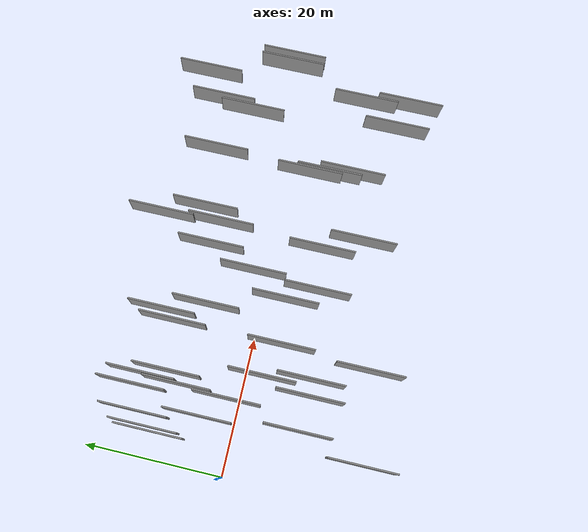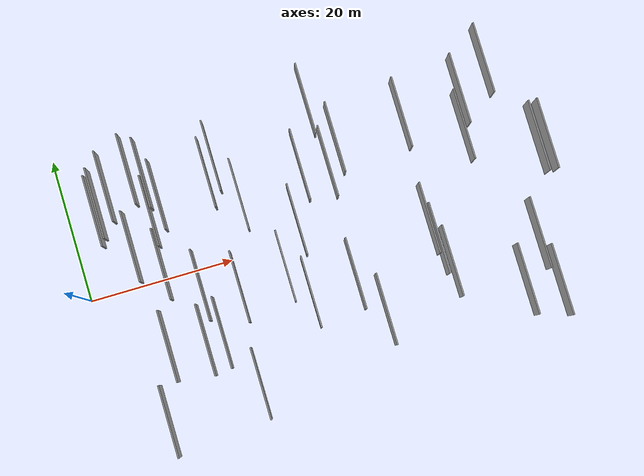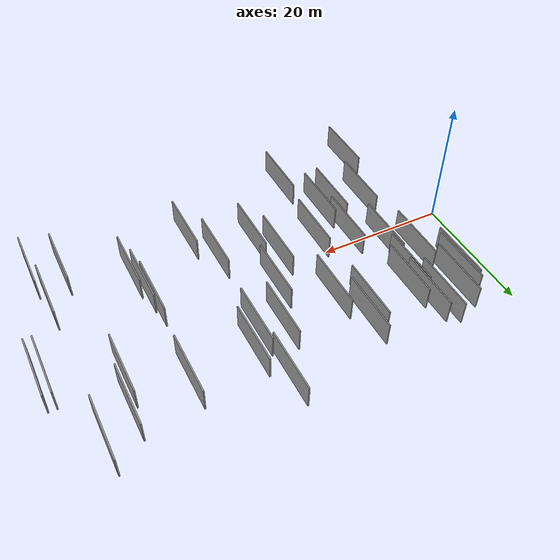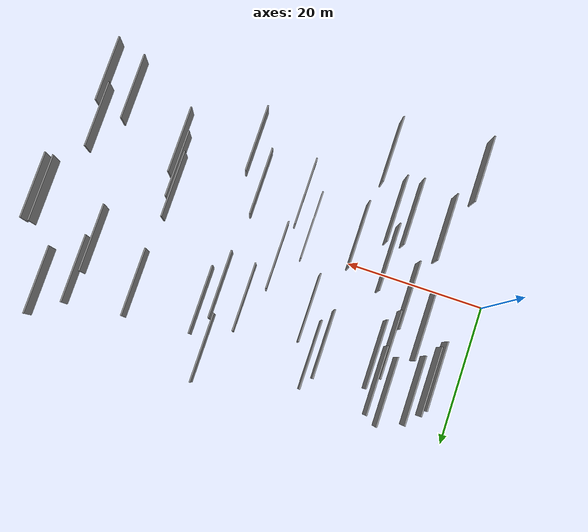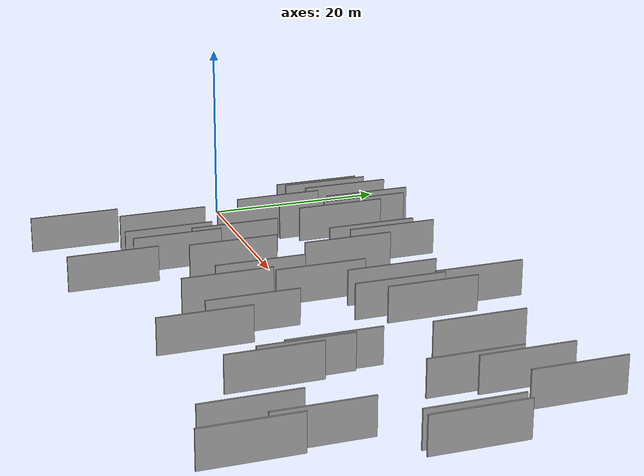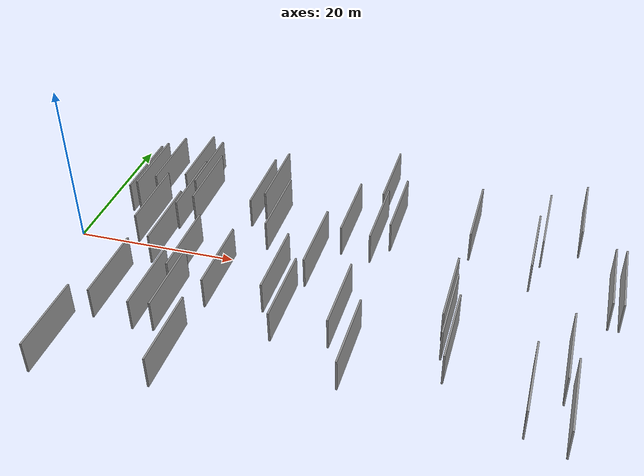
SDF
<sdf version="1.6">
 <world name="default">
  <scene>
   <sky><clouds><speed>12</speed></clouds></sky>
   <ambient>0.4 0.4 0.4 1</ambient>
   <background>0.7 0.7 0.7 1</background>
   <shadows>1</shadows>
  </scene>
  <gravity>0 0 -9.8066</gravity>
  <magnetic_field>6e-06 2.3e-05 -4.2e-05</magnetic_field>
  <physics default="0" name="default_physics" type="ode">
   <ode>
    <solver>
     <type>quick</type>
     <iters>10</iters>
     <sor>1.0</sor>
     <use_dynamic_moi_rescaling>0</use_dynamic_moi_rescaling>
    </solver>
    <constraints>
     <cfm>0</cfm>
     <erp>0.2</erp>
     <contact_max_correcting_vel>100</contact_max_correcting_vel>
     <contact_surface_layer>0.001</contact_surface_layer>
    </constraints>
   </ode>
   <max_step_size>0.004</max_step_size>
   <real_time_factor>1</real_time_factor>
   <real_time_update_rate>250</real_time_update_rate>
  </physics>
  <light name="sun" type="directional">
   <pose>0 0 10 0 0 0</pose>
   <diffuse>0.8 0.8 0.8 1</diffuse>
   <specular>0.2 0.2 0.2 1</specular>
   <attenuation>
    <range>1000</range>
    <constant>0.9</constant>
    <linear>0.01</linear>
    <quadratic>0.001</quadratic>
   </attenuation>
   <direction>-0.5 0.1 -0.9</direction>
  </light>
  <model name="grey_wall_1">
   <static>1</static>
   <pose>12.6579 11.2083 0.0 0.000000 0.000000 1.570796</pose>
   <link name="link">
    <pose>0 0 2.00 0 0 0</pose>
    <collision name="collision"><geometry><box><size>10.00 0.2 4.00</size></box></geometry></collision>
    <visual name="visual">
     <cast_shadows>0</cast_shadows>
     <geometry><box><size>10.00 0.2 4.00</size></box></geometry>
     <material>
      <script>
       <uri>model://grey_wall/materials/scripts</uri>
       <uri>model://grey_wall/materials/textures</uri>
       <name>vrc/grey_wall</name>
      </script>
     </material>
    </visual>
   </link>
  </model>
  <model name="grey_wall_2">
   <static>1</static>
   <pose>29.0719 -7.4037 0.0 0.000000 0.000000 1.570796</pose>
   <link name="link">
    <pose>0 0 2.00 0 0 0</pose>
    <collision name="collision"><geometry><box><size>10.00 0.2 4.00</size></box></geometry></collision>
    <visual name="visual">
     <cast_shadows>0</cast_shadows>
     <geometry><box><size>10.00 0.2 4.00</size></box></geometry>
     <material>
      <script>
       <uri>model://grey_wall/materials/scripts</uri>
       <uri>model://grey_wall/materials/textures</uri>
       <name>vrc/grey_wall</name>
      </script>
     </material>
    </visual>
   </link>
  </model>
  <model name="grey_wall_3">
   <static>1</static>
   <pose>60.6945 16.6076 0.0 0.000000 0.000000 1.570796</pose>
   <link name="link">
    <pose>0 0 2.00 0 0 0</pose>
    <collision name="collision"><geometry><box><size>10.00 0.2 4.00</size></box></geometry></collision>
    <visual name="visual">
     <cast_shadows>0</cast_shadows>
     <geometry><box><size>10.00 0.2 4.00</size></box></geometry>
     <material>
      <script>
       <uri>model://grey_wall/materials/scripts</uri>
       <uri>model://grey_wall/materials/textures</uri>
       <name>vrc/grey_wall</name>
      </script>
     </material>
    </visual>
   </link>
  </model>
  <model name="grey_wall_4">
   <static>1</static>
   <pose>21.2465 14.1780 0.0 0.000000 0.000000 1.570796</pose>
   <link name="link">
    <pose>0 0 2.00 0 0 0</pose>
    <collision name="collision"><geometry><box><size>10.00 0.2 4.00</size></box></geometry></collision>
    <visual name="visual">
     <cast_shadows>0</cast_shadows>
     <geometry><box><size>10.00 0.2 4.00</size></box></geometry>
     <material>
      <script>
       <uri>model://grey_wall/materials/scripts</uri>
       <uri>model://grey_wall/materials/textures</uri>
       <name>vrc/grey_wall</name>
      </script>
     </material>
    </visual>
   </link>
  </model>
  <model name="grey_wall_5">
   <static>1</static>
   <pose>7.4385 5.3698 0.0 0.000000 0.000000 1.570796</pose>
   <link name="link">
    <pose>0 0 2.00 0 0 0</pose>
    <collision name="collision"><geometry><box><size>10.00 0.2 4.00</size></box></geometry></collision>
    <visual name="visual">
     <cast_shadows>0</cast_shadows>
     <geometry><box><size>10.00 0.2 4.00</size></box></geometry>
     <material>
      <script>
       <uri>model://grey_wall/materials/scripts</uri>
       <uri>model://grey_wall/materials/textures</uri>
       <name>vrc/grey_wall</name>
      </script>
     </material>
    </visual>
   </link>
  </model>
  <model name="grey_wall_6">
   <static>1</static>
   <pose>61.8766 -15.3295 0.0 0.000000 0.000000 1.570796</pose>
   <link name="link">
    <pose>0 0 2.00 0 0 0</pose>
    <collision name="collision"><geometry><box><size>10.00 0.2 4.00</size></box></geometry></collision>
    <visual name="visual">
     <cast_shadows>0</cast_shadows>
     <geometry><box><size>10.00 0.2 4.00</size></box></geometry>
     <material>
      <script>
       <uri>model://grey_wall/materials/scripts</uri>
       <uri>model://grey_wall/materials/textures</uri>
       <name>vrc/grey_wall</name>
      </script>
     </material>
    </visual>
   </link>
  </model>
  <model name="grey_wall_7">
   <static>1</static>
   <pose>64.7455 4.1946 0.0 0.000000 0.000000 1.570796</pose>
   <link name="link">
    <pose>0 0 2.00 0 0 0</pose>
    <collision name="collision"><geometry><box><size>10.00 0.2 4.00</size></box></geometry></collision>
    <visual name="visual">
     <cast_shadows>0</cast_shadows>
     <geometry><box><size>10.00 0.2 4.00</size></box></geometry>
     <material>
      <script>
       <uri>model://grey_wall/materials/scripts</uri>
       <uri>model://grey_wall/materials/textures</uri>
       <name>vrc/grey_wall</name>
      </script>
     </material>
    </visual>
   </link>
  </model>
  <model name="grey_wall_8">
   <static>1</static>
   <pose>6.0194 -18.6114 0.0 0.000000 0.000000 1.570796</pose>
   <link name="link">
    <pose>0 0 2.00 0 0 0</pose>
    <collision name="collision"><geometry><box><size>10.00 0.2 4.00</size></box></geometry></collision>
    <visual name="visual">
     <cast_shadows>0</cast_shadows>
     <geometry><box><size>10.00 0.2 4.00</size></box></geometry>
     <material>
      <script>
       <uri>model://grey_wall/materials/scripts</uri>
       <uri>model://grey_wall/materials/textures</uri>
       <name>vrc/grey_wall</name>
      </script>
     </material>
    </visual>
   </link>
  </model>
  <model name="grey_wall_9">
   <static>1</static>
   <pose>11.5013 14.6143 0.0 0.000000 0.000000 1.570796</pose>
   <link name="link">
    <pose>0 0 2.00 0 0 0</pose>
    <collision name="collision"><geometry><box><size>10.00 0.2 4.00</size></box></geometry></collision>
    <visual name="visual">
     <cast_shadows>0</cast_shadows>
     <geometry><box><size>10.00 0.2 4.00</size></box></geometry>
     <material>
      <script>
       <uri>model://grey_wall/materials/scripts</uri>
       <uri>model://grey_wall/materials/textures</uri>
       <name>vrc/grey_wall</name>
      </script>
     </material>
    </visual>
   </link>
  </model>
  <model name="grey_wall_10">
   <static>1</static>
   <pose>38.1137 -12.4736 0.0 0.000000 0.000000 1.570796</pose>
   <link name="link">
    <pose>0 0 2.00 0 0 0</pose>
    <collision name="collision"><geometry><box><size>10.00 0.2 4.00</size></box></geometry></collision>
    <visual name="visual">
     <cast_shadows>0</cast_shadows>
     <geometry><box><size>10.00 0.2 4.00</size></box></geometry>
     <material>
      <script>
       <uri>model://grey_wall/materials/scripts</uri>
       <uri>model://grey_wall/materials/textures</uri>
       <name>vrc/grey_wall</name>
      </script>
     </material>
    </visual>
   </link>
  </model>
  <model name="grey_wall_11">
   <static>1</static>
   <pose>8.5839 -8.9344 0.0 0.000000 0.000000 1.570796</pose>
   <link name="link">
    <pose>0 0 2.00 0 0 0</pose>
    <collision name="collision"><geometry><box><size>10.00 0.2 4.00</size></box></geometry></collision>
    <visual name="visual">
     <cast_shadows>0</cast_shadows>
     <geometry><box><size>10.00 0.2 4.00</size></box></geometry>
     <material>
      <script>
       <uri>model://grey_wall/materials/scripts</uri>
       <uri>model://grey_wall/materials/textures</uri>
       <name>vrc/grey_wall</name>
      </script>
     </material>
    </visual>
   </link>
  </model>
  <model name="grey_wall_12">
   <static>1</static>
   <pose>9.7428 15.6504 0.0 0.000000 0.000000 1.570796</pose>
   <link name="link">
    <pose>0 0 2.00 0 0 0</pose>
    <collision name="collision"><geometry><box><size>10.00 0.2 4.00</size></box></geometry></collision>
    <visual name="visual">
     <cast_shadows>0</cast_shadows>
     <geometry><box><size>10.00 0.2 4.00</size></box></geometry>
     <material>
      <script>
       <uri>model://grey_wall/materials/scripts</uri>
       <uri>model://grey_wall/materials/textures</uri>
       <name>vrc/grey_wall</name>
      </script>
     </material>
    </visual>
   </link>
  </model>
  <model name="grey_wall_13">
   <static>1</static>
   <pose>60.9667 -8.4664 0.0 0.000000 0.000000 1.570796</pose>
   <link name="link">
    <pose>0 0 2.00 0 0 0</pose>
    <collision name="collision"><geometry><box><size>10.00 0.2 4.00</size></box></geometry></collision>
    <visual name="visual">
     <cast_shadows>0</cast_shadows>
     <geometry><box><size>10.00 0.2 4.00</size></box></geometry>
     <material>
      <script>
       <uri>model://grey_wall/materials/scripts</uri>
       <uri>model://grey_wall/materials/textures</uri>
       <name>vrc/grey_wall</name>
      </script>
     </material>
    </visual>
   </link>
  </model>
  <model name="grey_wall_14">
   <static>1</static>
   <pose>11.1623 9.2940 0.0 0.000000 0.000000 1.570796</pose>
   <link name="link">
    <pose>0 0 2.00 0 0 0</pose>
    <collision name="collision"><geometry><box><size>10.00 0.2 4.00</size></box></geometry></collision>
    <visual name="visual">
     <cast_shadows>0</cast_shadows>
     <geometry><box><size>10.00 0.2 4.00</size></box></geometry>
     <material>
      <script>
       <uri>model://grey_wall/materials/scripts</uri>
       <uri>model://grey_wall/materials/textures</uri>
       <name>vrc/grey_wall</name>
      </script>
     </material>
    </visual>
   </link>
  </model>
  <model name="grey_wall_15">
   <static>1</static>
   <pose>19.1810 -17.2312 0.0 0.000000 0.000000 1.570796</pose>
   <link name="link">
    <pose>0 0 2.00 0 0 0</pose>
    <collision name="collision"><geometry><box><size>10.00 0.2 4.00</size></box></geometry></collision>
    <visual name="visual">
     <cast_shadows>0</cast_shadows>
     <geometry><box><size>10.00 0.2 4.00</size></box></geometry>
     <material>
      <script>
       <uri>model://grey_wall/materials/scripts</uri>
       <uri>model://grey_wall/materials/textures</uri>
       <name>vrc/grey_wall</name>
      </script>
     </material>
    </visual>
   </link>
  </model>
  <model name="grey_wall_16">
   <static>1</static>
   <pose>26.7497 -3.0774 0.0 0.000000 0.000000 1.570796</pose>
   <link name="link">
    <pose>0 0 2.00 0 0 0</pose>
    <collision name="collision"><geometry><box><size>10.00 0.2 4.00</size></box></geometry></collision>
    <visual name="visual">
     <cast_shadows>0</cast_shadows>
     <geometry><box><size>10.00 0.2 4.00</size></box></geometry>
     <material>
      <script>
       <uri>model://grey_wall/materials/scripts</uri>
       <uri>model://grey_wall/materials/textures</uri>
       <name>vrc/grey_wall</name>
      </script>
     </material>
    </visual>
   </link>
  </model>
  <model name="grey_wall_17">
   <static>1</static>
   <pose>36.2596 8.9802 0.0 0.000000 0.000000 1.570796</pose>
   <link name="link">
    <pose>0 0 2.00 0 0 0</pose>
    <collision name="collision"><geometry><box><size>10.00 0.2 4.00</size></box></geometry></collision>
    <visual name="visual">
     <cast_shadows>0</cast_shadows>
     <geometry><box><size>10.00 0.2 4.00</size></box></geometry>
     <material>
      <script>
       <uri>model://grey_wall/materials/scripts</uri>
       <uri>model://grey_wall/materials/textures</uri>
       <name>vrc/grey_wall</name>
      </script>
     </material>
    </visual>
   </link>
  </model>
  <model name="grey_wall_18">
   <static>1</static>
   <pose>56.3521 13.4899 0.0 0.000000 0.000000 1.570796</pose>
   <link name="link">
    <pose>0 0 2.00 0 0 0</pose>
    <collision name="collision"><geometry><box><size>10.00 0.2 4.00</size></box></geometry></collision>
    <visual name="visual">
     <cast_shadows>0</cast_shadows>
     <geometry><box><size>10.00 0.2 4.00</size></box></geometry>
     <material>
      <script>
       <uri>model://grey_wall/materials/scripts</uri>
       <uri>model://grey_wall/materials/textures</uri>
       <name>vrc/grey_wall</name>
      </script>
     </material>
    </visual>
   </link>
  </model>
  <model name="grey_wall_19">
   <static>1</static>
   <pose>6.1523 14.2588 0.0 0.000000 0.000000 1.570796</pose>
   <link name="link">
    <pose>0 0 2.00 0 0 0</pose>
    <collision name="collision"><geometry><box><size>10.00 0.2 4.00</size></box></geometry></collision>
    <visual name="visual">
     <cast_shadows>0</cast_shadows>
     <geometry><box><size>10.00 0.2 4.00</size></box></geometry>
     <material>
      <script>
       <uri>model://grey_wall/materials/scripts</uri>
       <uri>model://grey_wall/materials/textures</uri>
       <name>vrc/grey_wall</name>
      </script>
     </material>
    </visual>
   </link>
  </model>
  <model name="grey_wall_20">
   <static>1</static>
   <pose>30.0039 2.5264 0.0 0.000000 0.000000 1.570796</pose>
   <link name="link">
    <pose>0 0 2.00 0 0 0</pose>
    <collision name="collision"><geometry><box><size>10.00 0.2 4.00</size></box></geometry></collision>
    <visual name="visual">
     <cast_shadows>0</cast_shadows>
     <geometry><box><size>10.00 0.2 4.00</size></box></geometry>
     <material>
      <script>
       <uri>model://grey_wall/materials/scripts</uri>
       <uri>model://grey_wall/materials/textures</uri>
       <name>vrc/grey_wall</name>
      </script>
     </material>
    </visual>
   </link>
  </model>
  <model name="grey_wall_21">
   <static>1</static>
   <pose>3.8511 11.4149 0.0 0.000000 0.000000 1.570796</pose>
   <link name="link">
    <pose>0 0 2.00 0 0 0</pose>
    <collision name="collision"><geometry><box><size>10.00 0.2 4.00</size></box></geometry></collision>
    <visual name="visual">
     <cast_shadows>0</cast_shadows>
     <geometry><box><size>10.00 0.2 4.00</size></box></geometry>
     <material>
      <script>
       <uri>model://grey_wall/materials/scripts</uri>
       <uri>model://grey_wall/materials/textures</uri>
       <name>vrc/grey_wall</name>
      </script>
     </material>
    </visual>
   </link>
  </model>
  <model name="grey_wall_22">
   <static>1</static>
   <pose>35.5313 -6.7264 0.0 0.000000 0.000000 1.570796</pose>
   <link name="link">
    <pose>0 0 2.00 0 0 0</pose>
    <collision name="collision"><geometry><box><size>10.00 0.2 4.00</size></box></geometry></collision>
    <visual name="visual">
     <cast_shadows>0</cast_shadows>
     <geometry><box><size>10.00 0.2 4.00</size></box></geometry>
     <material>
      <script>
       <uri>model://grey_wall/materials/scripts</uri>
       <uri>model://grey_wall/materials/textures</uri>
       <name>vrc/grey_wall</name>
      </script>
     </material>
    </visual>
   </link>
  </model>
  <model name="grey_wall_23">
   <static>1</static>
   <pose>38.1249 11.8530 0.0 0.000000 0.000000 1.570796</pose>
   <link name="link">
    <pose>0 0 2.00 0 0 0</pose>
    <collision name="collision"><geometry><box><size>10.00 0.2 4.00</size></box></geometry></collision>
    <visual name="visual">
     <cast_shadows>0</cast_shadows>
     <geometry><box><size>10.00 0.2 4.00</size></box></geometry>
     <material>
      <script>
       <uri>model://grey_wall/materials/scripts</uri>
       <uri>model://grey_wall/materials/textures</uri>
       <name>vrc/grey_wall</name>
      </script>
     </material>
    </visual>
   </link>
  </model>
  <model name="grey_wall_24">
   <static>1</static>
   <pose>47.7930 12.5827 0.0 0.000000 0.000000 1.570796</pose>
   <link name="link">
    <pose>0 0 2.00 0 0 0</pose>
    <collision name="collision"><geometry><box><size>10.00 0.2 4.00</size></box></geometry></collision>
    <visual name="visual">
     <cast_shadows>0</cast_shadows>
     <geometry><box><size>10.00 0.2 4.00</size></box></geometry>
     <material>
      <script>
       <uri>model://grey_wall/materials/scripts</uri>
       <uri>model://grey_wall/materials/textures</uri>
       <name>vrc/grey_wall</name>
      </script>
     </material>
    </visual>
   </link>
  </model>
  <model name="grey_wall_25">
   <static>1</static>
   <pose>65.9557 4.1701 0.0 0.000000 0.000000 1.570796</pose>
   <link name="link">
    <pose>0 0 2.00 0 0 0</pose>
    <collision name="collision"><geometry><box><size>10.00 0.2 4.00</size></box></geometry></collision>
    <visual name="visual">
     <cast_shadows>0</cast_shadows>
     <geometry><box><size>10.00 0.2 4.00</size></box></geometry>
     <material>
      <script>
       <uri>model://grey_wall/materials/scripts</uri>
       <uri>model://grey_wall/materials/textures</uri>
       <name>vrc/grey_wall</name>
      </script>
     </material>
    </visual>
   </link>
  </model>
  <model name="grey_wall_26">
   <static>1</static>
   <pose>32.5019 9.5955 0.0 0.000000 0.000000 1.570796</pose>
   <link name="link">
    <pose>0 0 2.00 0 0 0</pose>
    <collision name="collision"><geometry><box><size>10.00 0.2 4.00</size></box></geometry></collision>
    <visual name="visual">
     <cast_shadows>0</cast_shadows>
     <geometry><box><size>10.00 0.2 4.00</size></box></geometry>
     <material>
      <script>
       <uri>model://grey_wall/materials/scripts</uri>
       <uri>model://grey_wall/materials/textures</uri>
       <name>vrc/grey_wall</name>
      </script>
     </material>
    </visual>
   </link>
  </model>
  <model name="grey_wall_27">
   <static>1</static>
   <pose>20.0350 -3.9924 0.0 0.000000 0.000000 1.570796</pose>
   <link name="link">
    <pose>0 0 2.00 0 0 0</pose>
    <collision name="collision"><geometry><box><size>10.00 0.2 4.00</size></box></geometry></collision>
    <visual name="visual">
     <cast_shadows>0</cast_shadows>
     <geometry><box><size>10.00 0.2 4.00</size></box></geometry>
     <material>
      <script>
       <uri>model://grey_wall/materials/scripts</uri>
       <uri>model://grey_wall/materials/textures</uri>
       <name>vrc/grey_wall</name>
      </script>
     </material>
    </visual>
   </link>
  </model>
  <model name="grey_wall_28">
   <static>1</static>
   <pose>55.4763 8.5840 0.0 0.000000 0.000000 1.570796</pose>
   <link name="link">
    <pose>0 0 2.00 0 0 0</pose>
    <collision name="collision"><geometry><box><size>10.00 0.2 4.00</size></box></geometry></collision>
    <visual name="visual">
     <cast_shadows>0</cast_shadows>
     <geometry><box><size>10.00 0.2 4.00</size></box></geometry>
     <material>
      <script>
       <uri>model://grey_wall/materials/scripts</uri>
       <uri>model://grey_wall/materials/textures</uri>
       <name>vrc/grey_wall</name>
      </script>
     </material>
    </visual>
   </link>
  </model>
  <model name="grey_wall_29">
   <static>1</static>
   <pose>47.6599 -5.3140 0.0 0.000000 0.000000 1.570796</pose>
   <link name="link">
    <pose>0 0 2.00 0 0 0</pose>
    <collision name="collision"><geometry><box><size>10.00 0.2 4.00</size></box></geometry></collision>
    <visual name="visual">
     <cast_shadows>0</cast_shadows>
     <geometry><box><size>10.00 0.2 4.00</size></box></geometry>
     <material>
      <script>
       <uri>model://grey_wall/materials/scripts</uri>
       <uri>model://grey_wall/materials/textures</uri>
       <name>vrc/grey_wall</name>
      </script>
     </material>
    </visual>
   </link>
  </model>
  <model name="grey_wall_30">
   <static>1</static>
   <pose>15.0125 -2.2922 0.0 0.000000 0.000000 1.570796</pose>
   <link name="link">
    <pose>0 0 2.00 0 0 0</pose>
    <collision name="collision"><geometry><box><size>10.00 0.2 4.00</size></box></geometry></collision>
    <visual name="visual">
     <cast_shadows>0</cast_shadows>
     <geometry><box><size>10.00 0.2 4.00</size></box></geometry>
     <material>
      <script>
       <uri>model://grey_wall/materials/scripts</uri>
       <uri>model://grey_wall/materials/textures</uri>
       <name>vrc/grey_wall</name>
      </script>
     </material>
    </visual>
   </link>
  </model>
  <model name="grey_wall_31">
   <static>1</static>
   <pose>57.5111 -13.9699 0.0 0.000000 0.000000 1.570796</pose>
   <link name="link">
    <pose>0 0 2.00 0 0 0</pose>
    <collision name="collision"><geometry><box><size>10.00 0.2 4.00</size></box></geometry></collision>
    <visual name="visual">
     <cast_shadows>0</cast_shadows>
     <geometry><box><size>10.00 0.2 4.00</size></box></geometry>
     <material>
      <script>
       <uri>model://grey_wall/materials/scripts</uri>
       <uri>model://grey_wall/materials/textures</uri>
       <name>vrc/grey_wall</name>
      </script>
     </material>
    </visual>
   </link>
  </model>
  <model name="grey_wall_32">
   <static>1</static>
   <pose>4.3864 12.3454 0.0 0.000000 0.000000 1.570796</pose>
   <link name="link">
    <pose>0 0 2.00 0 0 0</pose>
    <collision name="collision"><geometry><box><size>10.00 0.2 4.00</size></box></geometry></collision>
    <visual name="visual">
     <cast_shadows>0</cast_shadows>
     <geometry><box><size>10.00 0.2 4.00</size></box></geometry>
     <material>
      <script>
       <uri>model://grey_wall/materials/scripts</uri>
       <uri>model://grey_wall/materials/textures</uri>
       <name>vrc/grey_wall</name>
      </script>
     </material>
    </visual>
   </link>
  </model>
  <model name="grey_wall_33">
   <static>1</static>
   <pose>19.9664 12.2101 0.0 0.000000 0.000000 1.570796</pose>
   <link name="link">
    <pose>0 0 2.00 0 0 0</pose>
    <collision name="collision"><geometry><box><size>10.00 0.2 4.00</size></box></geometry></collision>
    <visual name="visual">
     <cast_shadows>0</cast_shadows>
     <geometry><box><size>10.00 0.2 4.00</size></box></geometry>
     <material>
      <script>
       <uri>model://grey_wall/materials/scripts</uri>
       <uri>model://grey_wall/materials/textures</uri>
       <name>vrc/grey_wall</name>
      </script>
     </material>
    </visual>
   </link>
  </model>
  <model name="grey_wall_34">
   <static>1</static>
   <pose>23.4179 8.0821 0.0 0.000000 0.000000 1.570796</pose>
   <link name="link">
    <pose>0 0 2.00 0 0 0</pose>
    <collision name="collision"><geometry><box><size>10.00 0.2 4.00</size></box></geometry></collision>
    <visual name="visual">
     <cast_shadows>0</cast_shadows>
     <geometry><box><size>10.00 0.2 4.00</size></box></geometry>
     <material>
      <script>
       <uri>model://grey_wall/materials/scripts</uri>
       <uri>model://grey_wall/materials/textures</uri>
       <name>vrc/grey_wall</name>
      </script>
     </material>
    </visual>
   </link>
  </model>
  <model name="grey_wall_35">
   <static>1</static>
   <pose>48.4897 -8.7461 0.0 0.000000 0.000000 1.570796</pose>
   <link name="link">
    <pose>0 0 2.00 0 0 0</pose>
    <collision name="collision"><geometry><box><size>10.00 0.2 4.00</size></box></geometry></collision>
    <visual name="visual">
     <cast_shadows>0</cast_shadows>
     <geometry><box><size>10.00 0.2 4.00</size></box></geometry>
     <material>
      <script>
       <uri>model://grey_wall/materials/scripts</uri>
       <uri>model://grey_wall/materials/textures</uri>
       <name>vrc/grey_wall</name>
      </script>
     </material>
    </visual>
   </link>
  </model>
  <model name="grey_wall_36">
   <static>1</static>
   <pose>16.0602 -9.2191 0.0 0.000000 0.000000 1.570796</pose>
   <link name="link">
    <pose>0 0 2.00 0 0 0</pose>
    <collision name="collision"><geometry><box><size>10.00 0.2 4.00</size></box></geometry></collision>
    <visual name="visual">
     <cast_shadows>0</cast_shadows>
     <geometry><box><size>10.00 0.2 4.00</size></box></geometry>
     <material>
      <script>
       <uri>model://grey_wall/materials/scripts</uri>
       <uri>model://grey_wall/materials/textures</uri>
       <name>vrc/grey_wall</name>
      </script>
     </material>
    </visual>
   </link>
  </model>
  <model name="grey_wall_37">
   <static>1</static>
   <pose>13.6767 -9.5695 0.0 0.000000 0.000000 1.570796</pose>
   <link name="link">
    <pose>0 0 2.00 0 0 0</pose>
    <collision name="collision"><geometry><box><size>10.00 0.2 4.00</size></box></geometry></collision>
    <visual name="visual">
     <cast_shadows>0</cast_shadows>
     <geometry><box><size>10.00 0.2 4.00</size></box></geometry>
     <material>
      <script>
       <uri>model://grey_wall/materials/scripts</uri>
       <uri>model://grey_wall/materials/textures</uri>
       <name>vrc/grey_wall</name>
      </script>
     </material>
    </visual>
   </link>
  </model>
  <model name="grey_wall_38">
   <static>1</static>
   <pose>10.7418 1.9167 0.0 0.000000 0.000000 1.570796</pose>
   <link name="link">
    <pose>0 0 2.00 0 0 0</pose>
    <collision name="collision"><geometry><box><size>10.00 0.2 4.00</size></box></geometry></collision>
    <visual name="visual">
     <cast_shadows>0</cast_shadows>
     <geometry><box><size>10.00 0.2 4.00</size></box></geometry>
     <material>
      <script>
       <uri>model://grey_wall/materials/scripts</uri>
       <uri>model://grey_wall/materials/textures</uri>
       <name>vrc/grey_wall</name>
      </script>
     </material>
    </visual>
   </link>
  </model>
  <model name="grey_wall_39">
   <static>1</static>
   <pose>47.2238 -2.3455 0.0 0.000000 0.000000 1.570796</pose>
   <link name="link">
    <pose>0 0 2.00 0 0 0</pose>
    <collision name="collision"><geometry><box><size>10.00 0.2 4.00</size></box></geometry></collision>
    <visual name="visual">
     <cast_shadows>0</cast_shadows>
     <geometry><box><size>10.00 0.2 4.00</size></box></geometry>
     <material>
      <script>
       <uri>model://grey_wall/materials/scripts</uri>
       <uri>model://grey_wall/materials/textures</uri>
       <name>vrc/grey_wall</name>
      </script>
     </material>
    </visual>
   </link>
  </model>
  <model name="grey_wall_40">
   <static>1</static>
   <pose>35.7731 18.0920 0.0 0.000000 0.000000 1.570796</pose>
   <link name="link">
    <pose>0 0 2.00 0 0 0</pose>
    <collision name="collision"><geometry><box><size>10.00 0.2 4.00</size></box></geometry></collision>
    <visual name="visual">
     <cast_shadows>0</cast_shadows>
     <geometry><box><size>10.00 0.2 4.00</size></box></geometry>
     <material>
      <script>
       <uri>model://grey_wall/materials/scripts</uri>
       <uri>model://grey_wall/materials/textures</uri>
       <name>vrc/grey_wall</name>
      </script>
     </material>
    </visual>
   </link>
  </model>
 </world>
</sdf>
